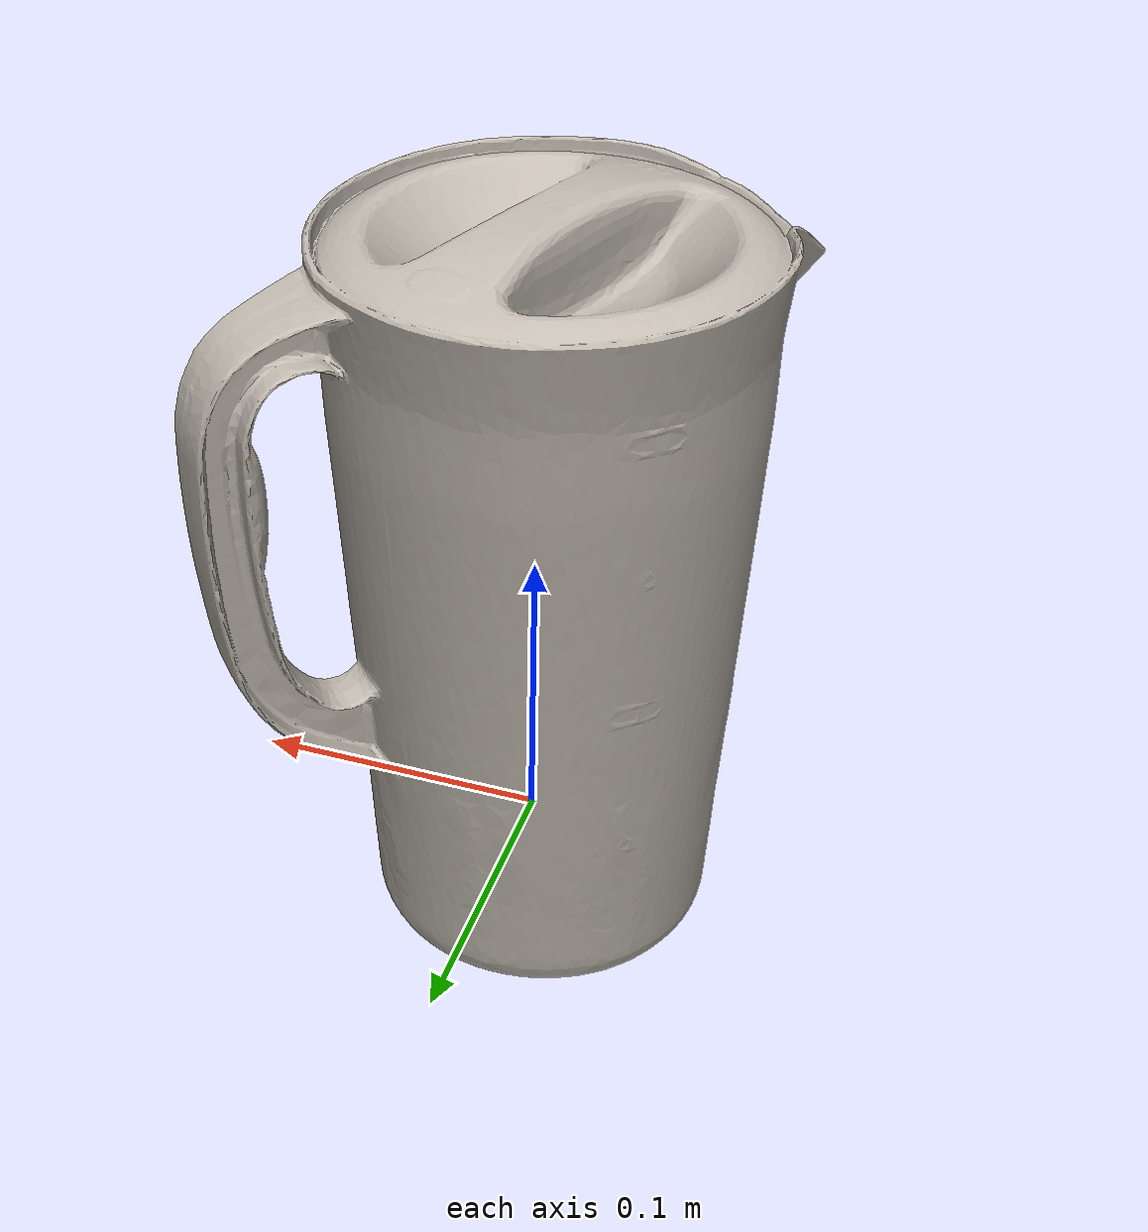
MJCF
<mujoco model="pitcher_base">
  <compiler angle="radian" meshdir="assets" texturedir="assets"/>
    <default>
        <default class="ycb_col">
            <geom contype="1" conaffinity="1" group="3" rgba=".4 .5 .6 1"/>
        </default>
        <default class="ycb_viz">
            <geom contype="0" conaffinity="0" type="mesh" mass="0"/>
        </default>
    </default>
  <asset>
    <texture type="2d" name="pitcher_base_tex" file="texture_map.png"/>
    <material name="pitcher_base_mat" texture="pitcher_base_tex" specular="0.5" shininess="0.5"/>
    <mesh file="textured.obj" name="pitcher_base"/>
    <mesh file="textured_collision_0.obj" name="pitcher_base_collision_0"/>
    <mesh file="textured_collision_1.obj" name="pitcher_base_collision_1"/>
    <mesh file="textured_collision_2.obj" name="pitcher_base_collision_2"/>
    <mesh file="textured_collision_3.obj" name="pitcher_base_collision_3"/>
    <mesh file="textured_collision_4.obj" name="pitcher_base_collision_4"/>
    <mesh file="textured_collision_5.obj" name="pitcher_base_collision_5"/>
    <mesh file="textured_collision_6.obj" name="pitcher_base_collision_6"/>
    <mesh file="textured_collision_7.obj" name="pitcher_base_collision_7"/>
    <mesh file="textured_collision_8.obj" name="pitcher_base_collision_8"/>
    <mesh file="textured_collision_9.obj" name="pitcher_base_collision_9"/>
    <mesh file="textured_collision_10.obj" name="pitcher_base_collision_10"/>
    <mesh file="textured_collision_11.obj" name="pitcher_base_collision_11"/>
    <mesh file="textured_collision_12.obj" name="pitcher_base_collision_12"/>
    <mesh file="textured_collision_13.obj" name="pitcher_base_collision_13"/>
    <mesh file="textured_collision_14.obj" name="pitcher_base_collision_14"/>
    <mesh file="textured_collision_15.obj" name="pitcher_base_collision_15"/>
  </asset>
  <worldbody>
      <geom class="ycb_viz" material="pitcher_base_mat" mesh="pitcher_base"/>
      <geom class="ycb_col" mesh="pitcher_base_collision_0" conaffinity="1" condim="4" friction="0.1 0.1 0.1" mass="0.1605841671647502" rgba="1 1 1 1" solimp="0.99 0.99 0.01" solref=".001 0.1" type="mesh" group="3"/>
      <geom class="ycb_col" mesh="pitcher_base_collision_1" conaffinity="1" condim="4" friction="0.1 0.1 0.1" mass="0.03359753200238548" rgba="1 1 1 1" solimp="0.99 0.99 0.01" solref=".001 0.1" type="mesh" group="3"/>
      <geom class="ycb_col" mesh="pitcher_base_collision_2" conaffinity="1" condim="4" friction="0.1 0.1 0.1" mass="0.009815902875315419" rgba="1 1 1 1" solimp="0.99 0.99 0.01" solref=".001 0.1" type="mesh" group="3"/>
      <geom class="ycb_col" mesh="pitcher_base_collision_3" conaffinity="1" condim="4" friction="0.1 0.1 0.1" mass="0.0003790973067620127" rgba="1 1 1 1" solimp="0.99 0.99 0.01" solref=".001 0.1" type="mesh" group="3"/>
      <geom class="ycb_col" mesh="pitcher_base_collision_4" conaffinity="1" condim="4" friction="0.1 0.1 0.1" mass="0.028746980131141766" rgba="1 1 1 1" solimp="0.99 0.99 0.01" solref=".001 0.1" type="mesh" group="3"/>
      <geom class="ycb_col" mesh="pitcher_base_collision_5" conaffinity="1" condim="4" friction="0.1 0.1 0.1" mass="0.0013981388278633592" rgba="1 1 1 1" solimp="0.99 0.99 0.01" solref=".001 0.1" type="mesh" group="3"/>
      <geom class="ycb_col" mesh="pitcher_base_collision_6" conaffinity="1" condim="4" friction="0.1 0.1 0.1" mass="0.0015279741386285564" rgba="1 1 1 1" solimp="0.99 0.99 0.01" solref=".001 0.1" type="mesh" group="3"/>
      <geom class="ycb_col" mesh="pitcher_base_collision_7" conaffinity="1" condim="4" friction="0.1 0.1 0.1" mass="0.0013515325292739202" rgba="1 1 1 1" solimp="0.99 0.99 0.01" solref=".001 0.1" type="mesh" group="3"/>
      <geom class="ycb_col" mesh="pitcher_base_collision_8" conaffinity="1" condim="4" friction="0.1 0.1 0.1" mass="0.0008607956328913917" rgba="1 1 1 1" solimp="0.99 0.99 0.01" solref=".001 0.1" type="mesh" group="3"/>
      <geom class="ycb_col" mesh="pitcher_base_collision_9" conaffinity="1" condim="4" friction="0.1 0.1 0.1" mass="0.0012033859067137364" rgba="1 1 1 1" solimp="0.99 0.99 0.01" solref=".001 0.1" type="mesh" group="3"/>
      <geom class="ycb_col" mesh="pitcher_base_collision_10" conaffinity="1" condim="4" friction="0.1 0.1 0.1" mass="0.0003973458300948034" rgba="1 1 1 1" solimp="0.99 0.99 0.01" solref=".001 0.1" type="mesh" group="3"/>
      <geom class="ycb_col" mesh="pitcher_base_collision_11" conaffinity="1" condim="4" friction="0.1 0.1 0.1" mass="0.0009642756309378512" rgba="1 1 1 1" solimp="0.99 0.99 0.01" solref=".001 0.1" type="mesh" group="3"/>
      <geom class="ycb_col" mesh="pitcher_base_collision_12" conaffinity="1" condim="4" friction="0.1 0.1 0.1" mass="0.0009905115204300087" rgba="1 1 1 1" solimp="0.99 0.99 0.01" solref=".001 0.1" type="mesh" group="3"/>
      <geom class="ycb_col" mesh="pitcher_base_collision_13" conaffinity="1" condim="4" friction="0.1 0.1 0.1" mass="0.000508028912590876" rgba="1 1 1 1" solimp="0.99 0.99 0.01" solref=".001 0.1" type="mesh" group="3"/>
      <geom class="ycb_col" mesh="pitcher_base_collision_14" conaffinity="1" condim="4" friction="0.1 0.1 0.1" mass="0.0014550434519958505" rgba="1 1 1 1" solimp="0.99 0.99 0.01" solref=".001 0.1" type="mesh" group="3"/>
      <geom class="ycb_col" mesh="pitcher_base_collision_15" conaffinity="1" condim="4" friction="0.1 0.1 0.1" mass="0.0002192881382247396" rgba="1 1 1 1" solimp="0.99 0.99 0.01" solref=".001 0.1" type="mesh" group="3"/>
  </worldbody>
</mujoco>
